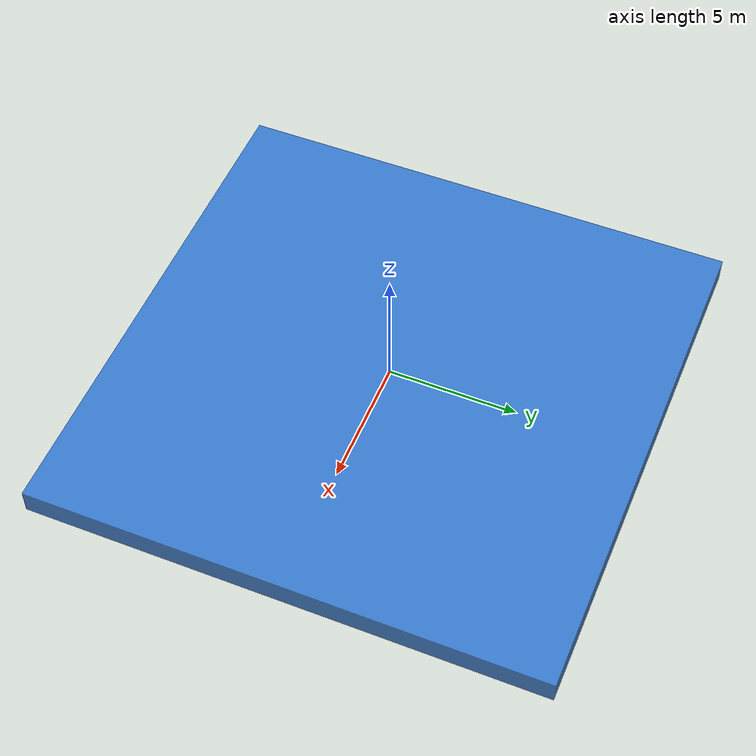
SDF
<?xml version="1.0" ?>
<sdf version="1.5">
  <world name="default">
    <include>
      <uri>model://sun</uri>
    </include>

    <model name="water_box">
      <static>true</static>
      <pose>0 0 -0.5 0 0 0</pose>
      <link name="link">
        <visual name="visual">
          <geometry>
            <box>
              <size>20 20 1.0</size>
            </box>
          </geometry>
          <material>
            <ambient>0.1 0.4 0.8 0.8</ambient>
            <diffuse>0.1 0.4 0.8 0.8</diffuse>
            <specular>0.1 0.1 0.1 1</specular>
            <emissive>0 0 0 0</emissive>
          </material>
        </visual>
      </link>
    </model>

    <physics type="ode">
      <gravity>0 0 -9.81</gravity>
    </physics>

    <spherical_coordinates>
      <surface_model>EARTH_WGS84</surface_model>
      <latitude_deg>0.0</latitude_deg>
      <longitude_deg>0.0</longitude_deg>
      <elevation>0.0</elevation>
      <heading_deg>0</heading_deg>
    </spherical_coordinates>

  </world>
</sdf>
